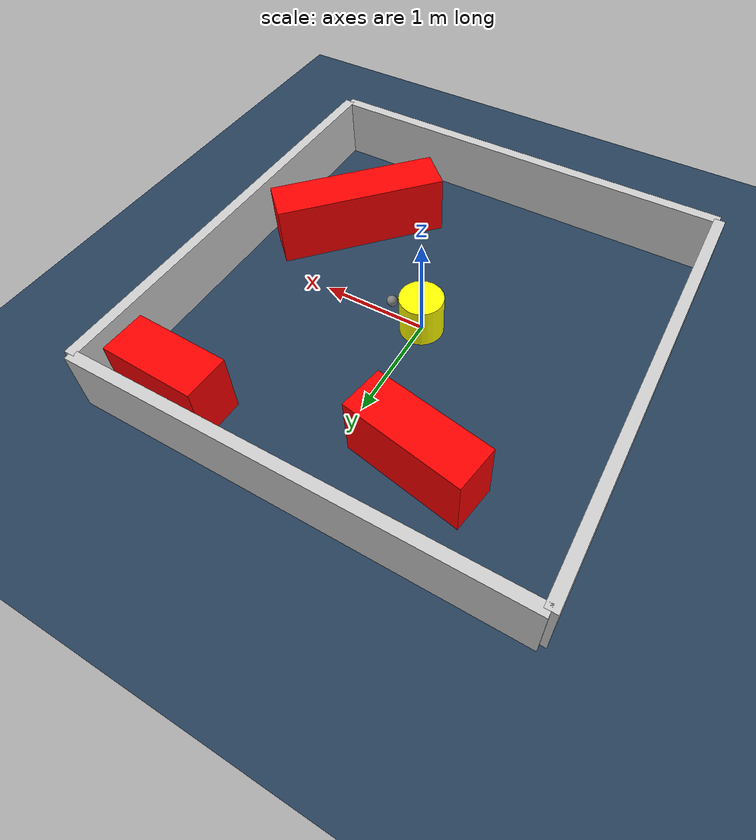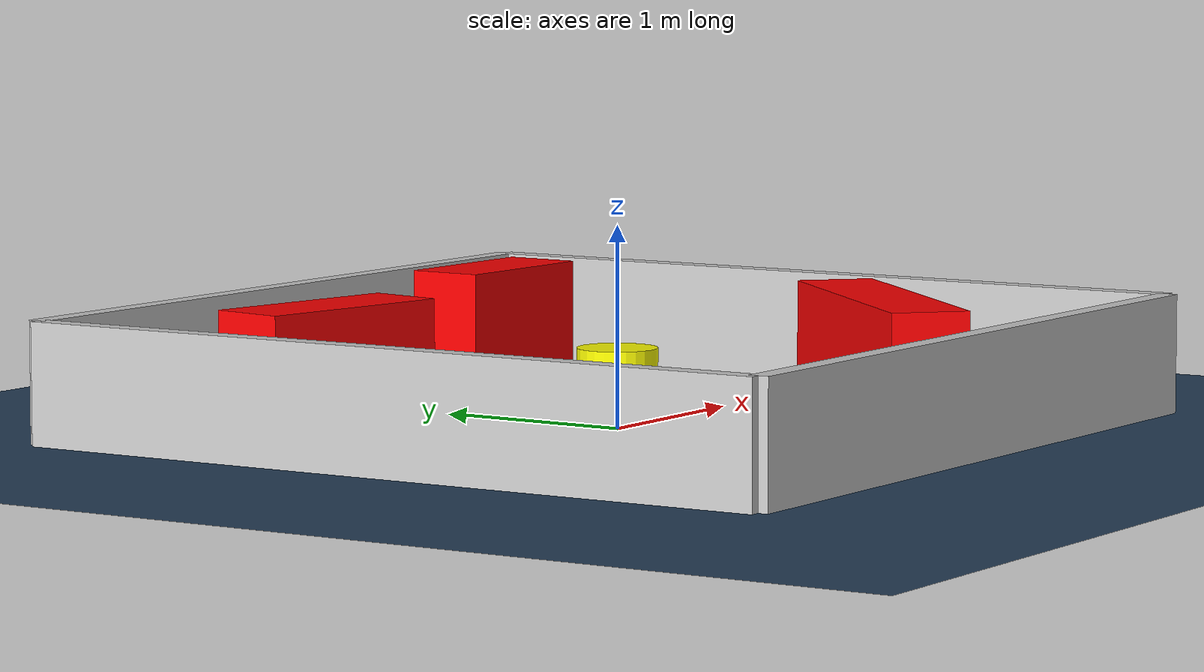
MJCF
<?xml version="1.0" ?>
<mujoco model="generated_environment">
  <option timestep="0.01" integrator="RK4" cone="elliptic"/>
  <default>
    <geom density="1"/>
  </default>
  <asset>
    <texture builtin="gradient" height="3072" rgb1="0.3 0.5 0.7" rgb2="0 0 0" type="skybox" width="512"/>
    <texture builtin="checker" height="300" mark="edge" markrgb="0.8 0.8 0.8" name="groundplane" rgb1="0.2 0.3 0.4" rgb2="0.1 0.2 0.3" type="2d" width="300"/>
    <material name="groundplane" reflectance="0.2" texrepeat="5 5" texture="groundplane" texuniform="true"/>
    <material name="robot" rgba="0.0 1.0 0.0 1"/>
  </asset>
  <worldbody>
    <light dir="0 0 -1" directional="true" pos="0 0 1.5"/>
    <geom condim="4" friction="1.0 0.005 0.001" material="groundplane" name="floor" size="0 0 0.05" type="plane"/>
    <body name="walls">
      <geom name="wall_1" condim="4" pos="-2.0 0.0 0.3" rgba="0.800000011920929 0.800000011920929 0.800000011920929 1.0" size="0.05 2.0 0.3" type="box"/>
      <geom name="wall_2" condim="4" pos="2.0 0.0 0.3" rgba="0.800000011920929 0.800000011920929 0.800000011920929 1.0" size="0.05 2.0 0.3" type="box"/>
      <geom name="wall_3" condim="4" pos="0.0 -2.0 0.3" rgba="0.800000011920929 0.800000011920929 0.800000011920929 1.0" size="2.0 0.05 0.3" type="box"/>
      <geom name="wall_4" condim="4" pos="0.0 2.0 0.3" rgba="0.800000011920929 0.800000011920929 0.800000011920929 1.0" size="2.0 0.05 0.3" type="box"/>
    </body>
    <body name="robot">
      <joint name="joint_x" type="slide" pos="0 0 0" axis="1 0 0"/>
      <joint name="joint_y" type="slide" pos="0 0 0" axis="0 1 0"/>
      <geom name="robot" type="sphere" pos="0.3 0.0 0.2" size="0.05" mass="5." friction="1.0 0.005 0.0001" condim="4" rgba="0.5 0.5 0.5 1.0"/>
      <site name="sensor_ball"/>
    </body>
    <body name="obstacle_movable_1">
      <geom name="obstacle_movable_1" condim="4" pos="0.0 0.0 0.2" euler="0 0 0.0" friction="1.0 0.005 0.001" rgba="1.0 1.0 0.0 1.0" size="0.2 0.2 0.0" type="cylinder" mass="0.1"/>
      <joint type="free"/>
    </body>
    <body name="obstacle_2_static">
      <geom name="obstacle_2_static" condim="4" pos="-0.6658407674275096 1.2633972938390456 0.3" euler="0 0 349.93642442209807" friction="1.0 0.005 0.001" rgba="1 0 0 1" size="0.5430290253730152 0.2 0.3" type="box"/>
    </body>
    <body name="obstacle_3_static">
      <geom name="obstacle_3_static" condim="4" pos="1.3650688928017454 1.6474945949603825 0.3" euler="0 0 178.0695536048606" friction="1.0 0.005 0.001" rgba="1 0 0 1" size="0.44177684616998525 0.2 0.3" type="box"/>
    </body>
    <body name="obstacle_4_static">
      <geom name="obstacle_4_static" condim="4" pos="1.1668130184668886 -0.8222788160254668 0.3" euler="0 0 46.829372001700634" friction="1.0 0.005 0.001" rgba="1 0 0 1" size="0.8005483470915051 0.2 0.3" type="box"/>
    </body>
  </worldbody>
  <actuator>
    <motor name="actuator_x" joint="joint_x" gear="1" ctrlrange="-1 1"/>
    <motor name="actuator_y" joint="joint_y" gear="1" ctrlrange="-1 1"/>
  </actuator>
</mujoco>
